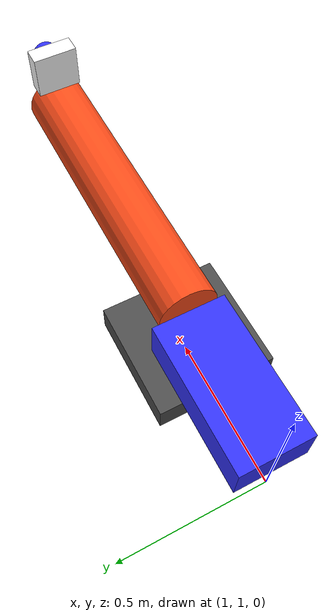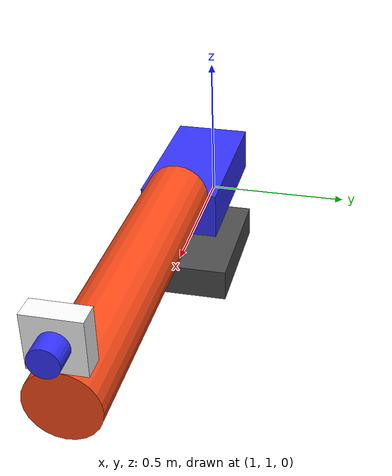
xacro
<?xml version="1.0"?>
<robot xmlns:xacro="http://www.ros.org/wiki/xacro"  name="test_rb_1">

    <!-- This is an example of a URDF. -->
    <!-- As we move through the file, new things to note will be pointed out. -->
    <!-- It's not meant an example of GOOD design, but an example of some of the various features of URDF/xacro. -->

    <!-- This will include all the contents of example_include.xacro first. Go check it out! -->
    <xacro:include filename="inertial_formulas.xacro" />
    <xacro:include filename="materials.xacro" />
    <xacro:include filename="gazebo.xacro" />

    <!-- Add Gazebo plugins for proper physics and joint states -->
    <gazebo>
        <!-- Joint state publisher plugin for Gazebo Harmonic -->
        <plugin name="gz::sim::systems::JointStatePublisher" filename="gz-sim-joint-state-publisher-system">
        </plugin>

        <!-- Pose publisher for TF -->
        <plugin name="gz::sim::systems::PosePublisher" filename="gz-sim-pose-publisher-system">
            <publish_link_pose>true</publish_link_pose>
            <publish_collision_pose>false</publish_collision_pose>
            <publish_visual_pose>false</publish_visual_pose>
            <use_pose_vector_msg>true</use_pose_vector_msg>
            <static_publisher>true</static_publisher>
            <static_update_frequency>1</static_update_frequency>
        </plugin>
    </gazebo>

    <!-- This first link called "world" is empty -->
    <link name="world"></link>

    <!-- A simple fixed joint from our empty world link, to our base. -->
    <!-- The base origin is offset from the world origin. -->
    <joint name="base_joint" type="fixed">
        <origin xyz="1.5 1.0 0" rpy="0 0 0"/>
        <parent link="world"/>
        <child link="base_link"/>
    </joint>

    <!-- base_link is a large rectangular plate. Some things to note: -->
    <!-- - We set the visual origin Z to half the box height, so that the link origin sits at the bottom of the box -->
    <!-- - We set the collision to be identical to the visual -->
    <!-- - We specified the colour manually (but still need to enter a name) -->
    <!-- - We specified all the inertial parameters manually -->
    <link name="base_link">
        <visual>
            <origin xyz="0 0 0.05" rpy="0 0 0"/>
            <geometry>
                <box size="0.4 0.4 0.1" />
            </geometry>
            <material name="gray" />
        </visual>
        <collision>
            <origin xyz="0 0 0.05" rpy="0 0 0"/>
            <geometry>
                <box size="0.4 0.4 0.1" />
            </geometry>
        </collision>
        <!-- Fixed: Use actual box dimensions instead of 0,0 -->
        <xacro:inertial_box mass="0.5" x="0.4" y="0.4" z="0.1">
            <origin xyz="0 0 0.05" rpy="0 0 0"/>
        </xacro:inertial_box>
    </link>

    <!-- slider_joint lets slider_link move back and forth along the top of the base in one dimension.  -->
    <!-- - Origin is set to one of the top edges of the base_link box, so that our link skims across the top  -->
    <!-- - It moves along the X axis -->
    <!-- - We need to specify limits for the motion -->
    <joint name="slider_joint" type="prismatic">
        <origin xyz="-0.25 0 0.1" rpy="0 0 0"/>
        <parent link="base_link"/>
        <child link="slider_link"/>
        <axis xyz="1 0 0"/>
        <limit lower="0" upper="0.5" velocity="100" effort="100"/>
    </joint>

    <!-- slider_link is the box skimming across the top of the base. Its parameters are similar to the base_link, however: -->
    <!-- - Instead of explicitly describing a colour, it uses the named material "blue". It knows about "blue" that material was included in example_include.xacro. -->
    <!-- - Instead of explicitly describing the inertia, we use a macro that was defined in the example_include.xacro -->

    <link name="slider_link">
        <visual>
            <origin xyz="0 0 0.075" rpy="0 0 0"/>
            <geometry>
                <box size="0.5 0.25 0.15" />
            </geometry>
            <material name="blue" />
        </visual>
        <collision>
            <origin xyz="0 0 0.075" rpy="0 0 0"/>
            <geometry>
                <box size="0.5 0.25 0.15" />
            </geometry>
        </collision>
        <xacro:inertial_box mass="0.5" x="0.5" y="0.25" z="0.15">
            <origin xyz="0 0 0.075" rpy="0 0 0"/>
        </xacro:inertial_box>
    </link>

    <!-- arm_joint describes the rotation of the arm and is centred around the top corner of the slider box. -->
    <!-- - The axis of rotation is -1 in Y, so that positive is "up" -->
    <!-- - The upper limit uses xacro's mathematical features -->
    <joint name="arm_joint" type="revolute">
        <origin xyz="0.25 0 0.15" rpy="0 0 0"/>
        <parent link="slider_link"/>
        <child link="arm_link"/>
        <axis xyz="0 -1 0"/>
        <limit lower="0" upper="${pi/2}" velocity="100" effort="100"/>
    </joint>

    <!-- arm_link describes the arm -->
    <!-- - We use the "property" feature to define the arm length and radius and use them multiple times -->
    <!-- - The visual/collision origin is set to halfway along the length (similar to the box), but also with a rotation (again using the mathematical features). -->
    <!--   This is because the cylinder extends along the Z axis by default, but we want it to be along the X axis (when the joint is at 0) -->

    <xacro:property name="arm_length" value="1" />
    <xacro:property name="arm_radius" value="0.1" />
    <link name="arm_link">
        <visual>
            <origin xyz="${arm_length/2} 0 0" rpy="0 ${pi/2} 0"/>
            <geometry>
                <cylinder length="${arm_length}" radius="${arm_radius}" />
            </geometry>
            <material name="orange" />
        </visual>
        <collision>
            <origin xyz="${arm_length/2} 0 0" rpy="0 ${pi/2} 0"/>
            <geometry>
                <cylinder length="${arm_length}" radius="${arm_radius}" />
            </geometry>
        </collision>
        <xacro:inertial_cylinder mass="1.0" length="${arm_length}" radius="${arm_radius}">
            <origin xyz="${arm_length/2} 0 0" rpy="0 ${pi/2} 0"/>
        </xacro:inertial_cylinder>
    </link>

    <!-- camera_joint describes where the camera is relative to the arm -->
    <!-- - Even though the camera isn't moving relative to the arm, it will probably be helpful to have its own link/frame rather than just adding more visuals to the arm -->
    <!-- - For this example, the camera_link origin will be at the centre of the camera's "sensor" -->
    <joint name="camera_joint" type="fixed">
        <origin xyz="${arm_length} 0 ${arm_radius + 0.075}" rpy="0 0 0"/>
        <parent link="arm_link"/>
        <child link="camera_link"/>
    </joint>

    <!-- camera_link describes the camera at the end of the arm -->
    <!-- - It has multiple visual elements, which ultimately get combined together -->
    <!-- - Even if we specify different materials, RViz will just colour them all the same as the first -->
    <!-- - Although we could also specify multiple collision geometries, instead we just use a single box that encompasses the whole camera -->
    <link name="camera_link">
        <visual>
            <origin xyz="-0.03 0 0" rpy="0 0 0"/>
            <geometry>
                <box size="0.06 0.15 0.15" />
            </geometry>
            <material name="white" />
        </visual>
        <visual>
            <origin xyz="0.03 0 0" rpy="0 ${pi/2} 0"/>
            <geometry>
                <cylinder length="0.06" radius="0.04" />
            </geometry>
            <material name="blue" />
        </visual>
        <collision>
            <origin xyz="0.0 0 0" rpy="0 0 0"/>
            <geometry>
                <box size="0.12 0.15 0.15" />
            </geometry>
        </collision>
        <xacro:inertial_box mass="0.1" x="0.12" y="0.15" z="0.15">
            <origin xyz="0.0 0 0" rpy="0 0 0"/>
        </xacro:inertial_box>
    </link>

</robot>

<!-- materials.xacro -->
<robot xmlns:xacro="http://www.ros.org/wiki/xacro" >

    <!-- This file is not a robot in and of itself, it just contains some useful tags that could be included in any robot -->

    <!-- Specify some colours -->

    <material name="white">
        <color rgba="1 1 1 1"/>
    </material>

    <material name="orange">
        <color rgba="1 0.3 0.1 1"/>
    </material>

    <material name="blue">
        <color rgba="0.2 0.2 1 1"/>
    </material>

    <material name="gray">
        <color rgba="0.3 0.3 0.3 1"/>
    </material>

</robot>
